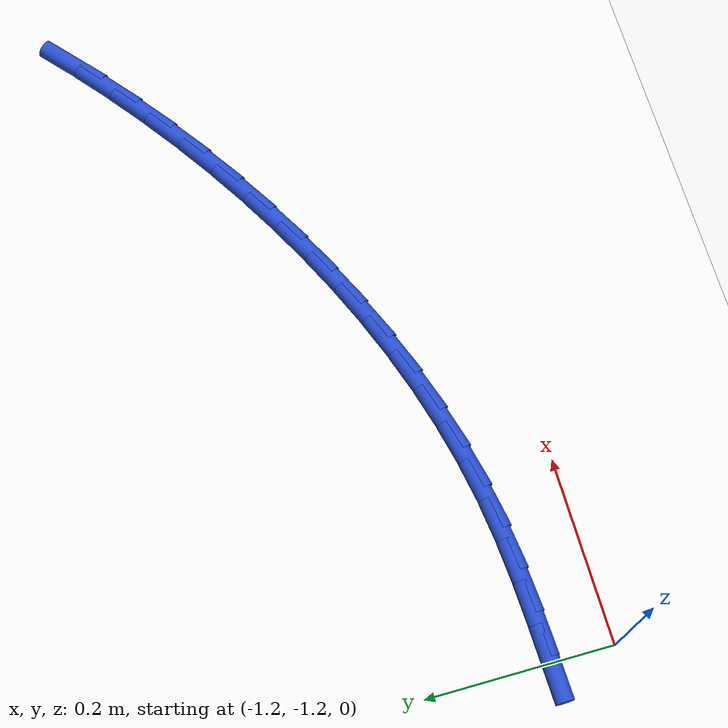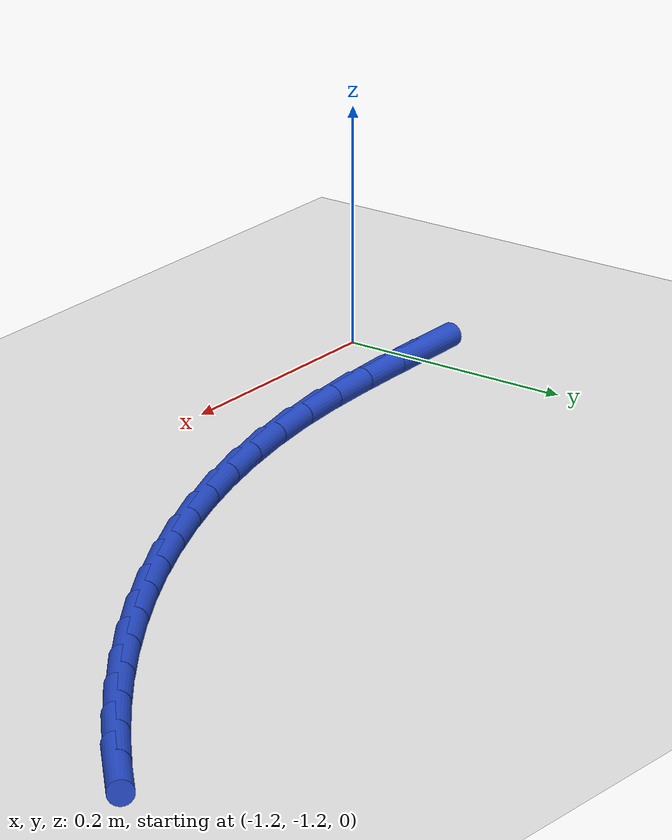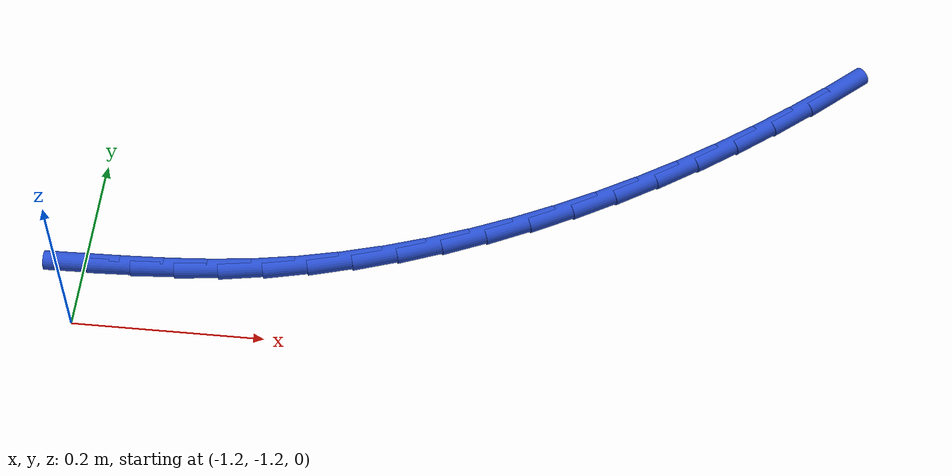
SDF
<sdf version="1.6">
 <world name="default">
  <model name="ground_plane">
   <static>1</static>
   <link name="link">
    <collision name="collision">
     <geometry><plane><normal>0 0 1</normal><size>100 100</size></plane></geometry>
     <surface><friction><ode><mu>100</mu><mu2>50</mu2></ode></friction></surface>
    </collision>
    <visual name="visual">
     <cast_shadows>0</cast_shadows>
     <geometry><plane><normal>0 0 1</normal><size>100 100</size></plane></geometry>
     <material>
      <script><uri>file://media/materials/scripts/gazebo.material</uri><name>Gazebo/WhiteGlow</name></script>
     </material>
    </visual>
   </link>
  </model>
  <model name="line">
   <link name="link_112">
    <pose>-1.200924294993558 -1.1311510314962712 0.01 0 1.57 0.02242919302496586</pose>
    <collision name="collision">
     <geometry><cylinder><radius>0.01</radius><length>0.08</length></cylinder></geometry>
    </collision>
    <visual name="visual">
     <material>
      <script><name>Gazebo/Blue</name><uri>file://media/materials/scripts/gazebo.material</uri></script>
     </material>
     <geometry><cylinder><radius>0.01</radius><length>0.08</length></cylinder></geometry>
    </visual>
   </link>
   <link name="link_113">
    <pose>-1.1549772613051554 -1.130120303760665 0.01 0 1.57 0.03930022998849299</pose>
    <collision name="collision">
     <geometry><cylinder><radius>0.01</radius><length>0.08</length></cylinder></geometry>
    </collision>
    <visual name="visual">
     <material>
      <script><name>Gazebo/Blue</name><uri>file://media/materials/scripts/gazebo.material</uri></script>
     </material>
     <geometry><cylinder><radius>0.01</radius><length>0.08</length></cylinder></geometry>
    </visual>
   </link>
   <link name="link_114">
    <pose>-1.1094586845185197 -1.1283304916695636 0.01 0 1.57 0.07062229470350355</pose>
    <collision name="collision">
     <geometry><cylinder><radius>0.01</radius><length>0.08</length></cylinder></geometry>
    </collision>
    <visual name="visual">
     <material>
      <script><name>Gazebo/Blue</name><uri>file://media/materials/scripts/gazebo.material</uri></script>
     </material>
     <geometry><cylinder><radius>0.01</radius><length>0.08</length></cylinder></geometry>
    </visual>
   </link>
   <link name="link_115">
    <pose>-1.0642073535925034 -1.1251294152722486 0.01 0 1.57 0.11606916282686908</pose>
    <collision name="collision">
     <geometry><cylinder><radius>0.01</radius><length>0.08</length></cylinder></geometry>
    </collision>
    <visual name="visual">
     <material>
      <script><name>Gazebo/Blue</name><uri>file://media/materials/scripts/gazebo.material</uri></script>
     </material>
     <geometry><cylinder><radius>0.01</radius><length>0.08</length></cylinder></geometry>
    </visual>
   </link>
   <link name="link_116">
    <pose>-1.0190623459528578 -1.1198658136037505 0.01 0 1.57 0.17039775456318207</pose>
    <collision name="collision">
     <geometry><cylinder><radius>0.01</radius><length>0.08</length></cylinder></geometry>
    </collision>
    <visual name="visual">
     <material>
      <script><name>Gazebo/Blue</name><uri>file://media/materials/scripts/gazebo.material</uri></script>
     </material>
     <geometry><cylinder><radius>0.01</radius><length>0.08</length></cylinder></geometry>
    </visual>
   </link>
   <link name="link_117">
    <pose>-0.9739291219425195 -1.1120999056139589 0.01 0 1.57 0.22317288651005074</pose>
    <collision name="collision">
     <geometry><cylinder><radius>0.01</radius><length>0.08</length></cylinder></geometry>
    </collision>
    <visual name="visual">
     <material>
      <script><name>Gazebo/Blue</name><uri>file://media/materials/scripts/gazebo.material</uri></script>
     </material>
     <geometry><cylinder><radius>0.01</radius><length>0.08</length></cylinder></geometry>
    </visual>
   </link>
   <link name="link_118">
    <pose>-0.9288639045929186 -1.1018722037059467 0.01 0 1.57 0.27311228908515917</pose>
    <collision name="collision">
     <geometry><cylinder><radius>0.01</radius><length>0.08</length></cylinder></geometry>
    </collision>
    <visual name="visual">
     <material>
      <script><name>Gazebo/Blue</name><uri>file://media/materials/scripts/gazebo.material</uri></script>
     </material>
     <geometry><cylinder><radius>0.01</radius><length>0.08</length></cylinder></geometry>
    </visual>
   </link>
   <link name="link_119">
    <pose>-0.8839437338197568 -1.0892895378400616 0.01 0 1.57 0.32036942639792904</pose>
    <collision name="collision">
     <geometry><cylinder><radius>0.01</radius><length>0.08</length></cylinder></geometry>
    </collision>
    <visual name="visual">
     <material>
      <script><name>Gazebo/Blue</name><uri>file://media/materials/scripts/gazebo.material</uri></script>
     </material>
     <geometry><cylinder><radius>0.01</radius><length>0.08</length></cylinder></geometry>
    </visual>
   </link>
   <link name="link_120">
    <pose>-0.8392456495387309 -1.074458737976648 0.01 0 1.57 0.3651234706057913</pose>
    <collision name="collision">
     <geometry><cylinder><radius>0.01</radius><length>0.08</length></cylinder></geometry>
    </collision>
    <visual name="visual">
     <material>
      <script><name>Gazebo/Blue</name><uri>file://media/materials/scripts/gazebo.material</uri></script>
     </material>
     <geometry><cylinder><radius>0.01</radius><length>0.08</length></cylinder></geometry>
    </visual>
   </link>
   <link name="link_121">
    <pose>-0.7948466916655409 -1.0574866340760525 0.01 0 1.57 0.4075690161410418</pose>
    <collision name="collision">
     <geometry><cylinder><radius>0.01</radius><length>0.08</length></cylinder></geometry>
    </collision>
    <visual name="visual">
     <material>
      <script><name>Gazebo/Blue</name><uri>file://media/materials/scripts/gazebo.material</uri></script>
     </material>
     <geometry><cylinder><radius>0.01</radius><length>0.08</length></cylinder></geometry>
    </visual>
   </link>
   <link name="link_122">
    <pose>-0.7508239001158861 -1.0384800560986207 0.01 0 1.57 0.44790829884037625</pose>
    <collision name="collision">
     <geometry><cylinder><radius>0.01</radius><length>0.08</length></cylinder></geometry>
    </collision>
    <visual name="visual">
     <material>
      <script><name>Gazebo/Blue</name><uri>file://media/materials/scripts/gazebo.material</uri></script>
     </material>
     <geometry><cylinder><radius>0.01</radius><length>0.08</length></cylinder></geometry>
    </visual>
   </link>
   <link name="link_123">
    <pose>-0.7072543148054645 -1.0175458340046986 0.01 0 1.57 0.48634562158767725</pose>
    <collision name="collision">
     <geometry><cylinder><radius>0.01</radius><length>0.08</length></cylinder></geometry>
    </collision>
    <visual name="visual">
     <material>
      <script><name>Gazebo/Blue</name><uri>file://media/materials/scripts/gazebo.material</uri></script>
     </material>
     <geometry><cylinder><radius>0.01</radius><length>0.08</length></cylinder></geometry>
    </visual>
   </link>
   <link name="link_124">
    <pose>-0.6642149756499751 -0.9947907977546314 0.01 0 1.57 0.5230836198443619</pose>
    <collision name="collision">
     <geometry><cylinder><radius>0.01</radius><length>0.08</length></cylinder></geometry>
    </collision>
    <visual name="visual">
     <material>
      <script><name>Gazebo/Blue</name><uri>file://media/materials/scripts/gazebo.material</uri></script>
     </material>
     <geometry><cylinder><radius>0.01</radius><length>0.08</length></cylinder></geometry>
    </visual>
   </link>
   <link name="link_125">
    <pose>-0.6217829225651184 -0.9703217773087665 0.01 0 1.57 0.5583210026335177</pose>
    <collision name="collision">
     <geometry><cylinder><radius>0.01</radius><length>0.08</length></cylinder></geometry>
    </collision>
    <visual name="visual">
     <material>
      <script><name>Gazebo/Blue</name><uri>file://media/materials/scripts/gazebo.material</uri></script>
     </material>
     <geometry><cylinder><radius>0.01</radius><length>0.08</length></cylinder></geometry>
    </visual>
   </link>
   <link name="link_126">
    <pose>-0.5800351954665915 -0.9442456026274483 0.01 0 1.57 0.5922514445917241</pose>
    <collision name="collision">
     <geometry><cylinder><radius>0.01</radius><length>0.08</length></cylinder></geometry>
    </collision>
    <visual name="visual">
     <material>
      <script><name>Gazebo/Blue</name><uri>file://media/materials/scripts/gazebo.material</uri></script>
     </material>
     <geometry><cylinder><radius>0.01</radius><length>0.08</length></cylinder></geometry>
    </visual>
   </link>
   <link name="link_127">
    <pose>-0.5390488342700948 -0.9166691036710234 0.01 0 1.57 0.6250633606664021</pose>
    <collision name="collision">
     <geometry><cylinder><radius>0.01</radius><length>0.08</length></cylinder></geometry>
    </collision>
    <visual name="visual">
     <material>
      <script><name>Gazebo/Blue</name><uri>file://media/materials/scripts/gazebo.material</uri></script>
     </material>
     <geometry><cylinder><radius>0.01</radius><length>0.08</length></cylinder></geometry>
    </visual>
   </link>
   <link name="link_128">
    <pose>-0.49890087889132595 -0.8876991103998372 0.01 0 1.57 0.6569403537803641</pose>
    <collision name="collision">
     <geometry><cylinder><radius>0.01</radius><length>0.08</length></cylinder></geometry>
    </collision>
    <visual name="visual">
     <material>
      <script><name>Gazebo/Blue</name><uri>file://media/materials/scripts/gazebo.material</uri></script>
     </material>
     <geometry><cylinder><radius>0.01</radius><length>0.08</length></cylinder></geometry>
    </visual>
   </link>
   <link name="link_129">
    <pose>-0.4596683692459845 -0.8574424527742356 0.01 0 1.57 0.688062180469352</pose>
    <collision name="collision">
     <geometry><cylinder><radius>0.01</radius><length>0.08</length></cylinder></geometry>
    </collision>
    <visual name="visual">
     <material>
      <script><name>Gazebo/Blue</name><uri>file://media/materials/scripts/gazebo.material</uri></script>
     </material>
     <geometry><cylinder><radius>0.01</radius><length>0.08</length></cylinder></geometry>
    </visual>
   </link>
   <link name="link_130">
    <pose>-0.4214283452497702 -0.8260059607545653 0.01 0 1.57 0.7186061273204778</pose>
    <collision name="collision">
     <geometry><cylinder><radius>0.01</radius><length>0.08</length></cylinder></geometry>
    </collision>
    <visual name="visual">
     <material>
      <script><name>Gazebo/Blue</name><uri>file://media/materials/scripts/gazebo.material</uri></script>
     </material>
     <geometry><cylinder><radius>0.01</radius><length>0.08</length></cylinder></geometry>
    </visual>
   </link>
  </model>
 </world>
</sdf>
